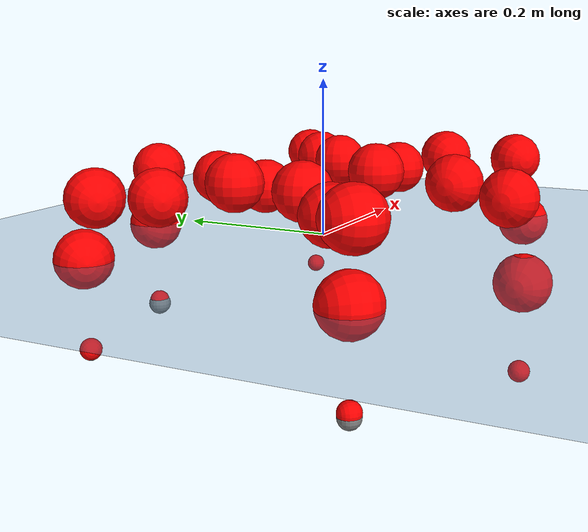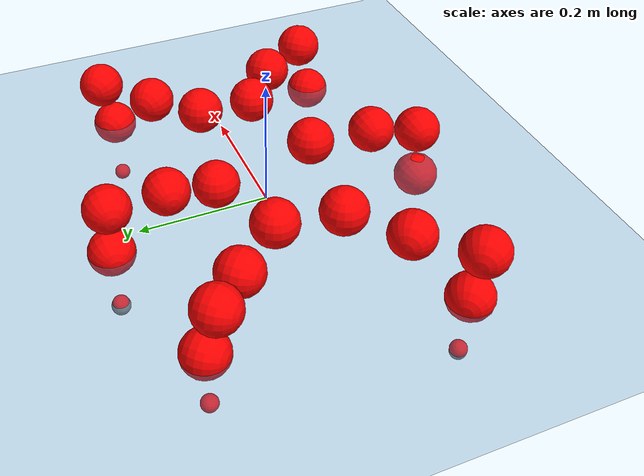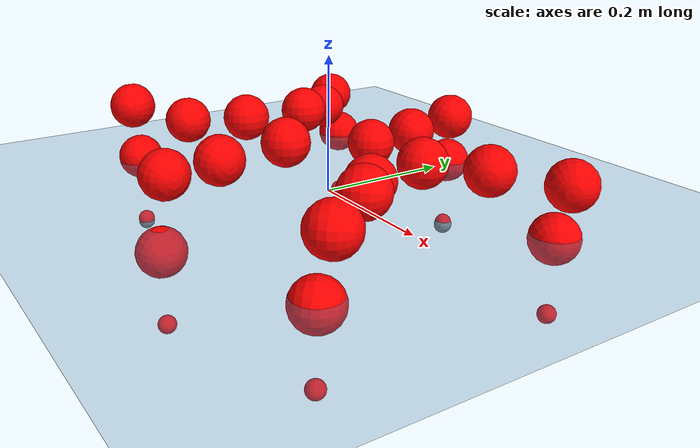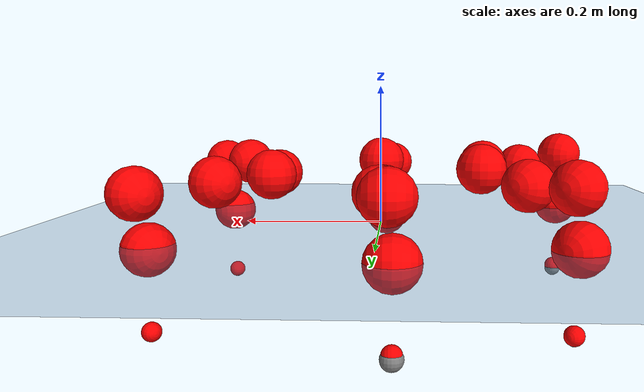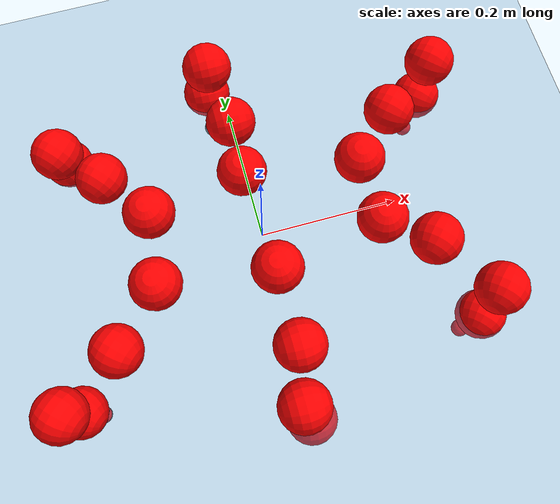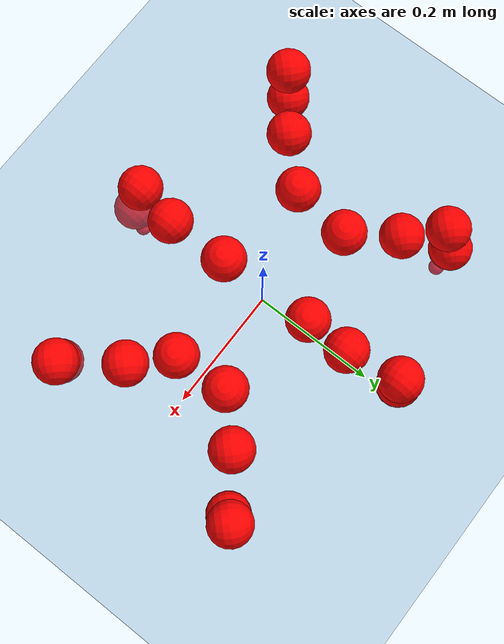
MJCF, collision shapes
<mujoco model="Golem">
  <compiler angle="radian" assetdir="assets" balanceinertia="true" inertiafromgeom="false"/>

  <option timestep="0.005" density="1.2" viscosity="2e-05"/>

  <size nkey="1"/>

  <visual>
    <quality shadowsize="8192"/>
    <map shadowclip="0.5"/>
  </visual>

  <default>
    <default class="/">
      <joint armature="0.01" damping="0.01" frictionloss="0.01"/>
      <geom contype="0" conaffinity="0" group="1" solref="-1000 -80"/>
      <site size="0.01 0.005 0.005" group="5"/>
      <general forcelimited="true" biastype="affine" gainprm="25" biasprm="0 -25 -0.5"/>
      <default class="visual">
        <geom type="mesh" group="2"/>
      </default>
      <default class="collision">
        <geom group="3"/>
      </default>
      <default class="foot">
        <geom size="0.01 0 0" condim="6" group="4" priority="1" solimp="0.015 1 0.01"/>
      </default>
      <default class="reward_collision_sphere">
        <geom group="5" rgba="1 0 0 1"/>
      </default>
    </default>
  </default>

  <asset>
    <texture type="skybox" colorspace="auto" name="//unnamed_texture_0" builtin="gradient" rgb1="0.95 0.95 0.95" rgb2="0.95 0.95 0.95" width="100" height="600"/>
    <texture type="2d" colorspace="auto" name="texplane" builtin="checker" rgb1="0.345 0.575 0.748" rgb2="0.345 0.575 0.748" markrgb="1 1 1" width="512" height="512"/>
    <material name="MatPlane" class="/" texture="texplane" texuniform="true" texrepeat="2 2" specular="0.9"/>
    <mesh name="body" class="/" file="body.stl" scale="0.001 0.001 0.001"/>
    <mesh name="coxa" class="/" file="coxa.stl" scale="0.001 0.001 0.001"/>
    <mesh name="femur" class="/" file="femur.stl" scale="0.001 0.001 0.001"/>
    <mesh name="tibia" class="/" file="tibia.stl" scale="0.001 0.001 0.001"/>
    <mesh name="tarsus" class="/" file="tarsus.stl" scale="0.001 0.001 0.001"/>
  </asset>

  <worldbody>
    <geom name="floor" class="/" size="100 100 0.125" type="plane" group="0" material="MatPlane"/>
    <light name="toplight_shadow" class="/" pos="0 0 5" dir="0.0990148 0.0990148 -0.990148" type="directional" ambient="0.04 0.04 0.04" diffuse="0.55 0.55 0.55" specular="0.12 0.12 0.12"/>
    <light name="toplight_fill" class="/" pos="0 0 5" dir="0.0990148 0.0990148 -0.990148" type="directional" castshadow="false" ambient="0.04 0.04 0.04" diffuse="0.3 0.3 0.3" specular="0.08 0.08 0.08"/>
    <body name="trunk" pos="0.00992702 -0.0040237 0.0171256" quat="0.999999 -1.8324e-05 0.000400178 0.00109111">
      <inertial pos="-0.0102391 0.00118154 -0.0158575" quat="0.997873 0.0332431 -0.0124358 0.0546766" mass="1.99503" diaginertia="0.0129052 0.00243664 0.00333405"/>
      <joint name="//unnamed_joint_0" type="free"/>
      <geom name="//unnamed_geom_1" class="/" pos="0 0 0.0531525" quat="1 0 0 0" type="mesh" rgba="0.9 0.9 0.9 1" mesh="body"/>
      <site name="imu" class="/" pos="0.112016 0.0226359 0.0460959" size="0.00880268"/>
      <camera name="track" class="/" pos="0 -1.57847 0" quat="0.707107 0.707107 0 0" mode="trackcom"/>
      <camera name="ego_camera" class="/" pos="0.132738 0 0.0830507" quat="-0.5 -0.5 0.5 0.5"/>
      <body name="coxa_RR" pos="-0.186489 -0.068882 0.0662469" quat="0.384425 0.00105747 0.00150819 -0.923155">
        <inertial pos="0.00260994 0.0168902 -0.00484833" quat="0.9995 0.0294628 0.0072976 -0.0088557" mass="0.164994" diaginertia="0.0158262 0.00304784 0.00437643"/>
        <joint name="coxa_joint_RR" class="/" pos="0 0 0" axis="0.000348664 0.0934263 -0.995626" range="-3.16501 3.38768" armature="0.0137222" damping="0.0538591" frictionloss="0.00660063"/>
        <geom name="//unnamed_geom_2" class="/" type="mesh" rgba="0.2 0.2 0.2 1" mesh="coxa"/>
        <geom name="//unnamed_geom_3" class="reward_collision_sphere" size="0.0352107" pos="-0.0306319 0 0"/>
        <body name="femur_RR" pos="0.0655825 0.000374103 -0.00955543" quat="0.499993 -0.499994 0.500042 0.499971">
          <inertial pos="0.00661504 -0.0109241 0.0108589" quat="0.999954 0.00615828 -0.0053985 0.00504778" mass="0.148215" diaginertia="0.0115605 0.00313571 0.00420089"/>
          <joint name="femur_joint_RR" class="/" pos="0 0 0" axis="-0.00418866 0.00564792 -0.999975" stiffness="0.0400739" range="-3.28011 3.45783" armature="0.0144672" damping="0" frictionloss="0.00313079"/>
          <geom name="//unnamed_geom_4" class="/" type="mesh" rgba="0.9 0.9 0.9 1" mesh="femur"/>
          <geom name="//unnamed_geom_5" class="reward_collision_sphere" size="0.0352107"/>
          <body name="tibia_RR" pos="-0.0154973 -0.0976711 -0.0123849" quat="0.00315096 0.999987 0.00393514 0.0010752">
            <inertial pos="0.0148577 0.0116094 -0.00137023" quat="0.997741 -0.0293764 0.0566607 -0.0209831" mass="0.13518" diaginertia="0.0139767 0.00346562 0.00451996"/>
            <joint name="tibia_joint_RR" class="/" pos="0 0 0" axis="0.0478224 0.0237162 0.998574" range="-2.80662 3.32075" armature="0.0139601" damping="0.0519832" frictionloss="0.0067895"/>
            <geom name="//unnamed_geom_6" class="/" type="mesh" rgba="0.2 0.2 0.2 1" mesh="tibia"/>
            <geom name="//unnamed_geom_7" class="reward_collision_sphere" size="0.0352107"/>
            <body name="tarsus_RR" pos="0.0853442 -0.00577152 0.000885828" quat="0.999994 -0.00150279 0.00277303 0.00163972">
              <inertial pos="0.0565254 -0.0156501 0.0129193" quat="0.483689 0.5346 0.501047 0.478749" mass="0.122923" diaginertia="0.0106396 0.00246495 0.00361813"/>
              <joint name="tarsus_joint_RR" class="/" pos="0 0 0" axis="-0.00362978 -0.0146729 0.999886" stiffness="0.0817346" range="-3.24211 3.12292" armature="0.00231842" damping="0" frictionloss="0.00270933"/>
              <geom name="//unnamed_geom_8" class="/" type="mesh" rgba="0.9 0.9 0.9 1" mesh="tarsus"/>
              <geom name="foot_1" class="foot" size="0.0129487" pos="0.114359 0 0" quat="0 -0.707107 0 0.707107"/>
              <geom name="//unnamed_geom_10" class="reward_collision_sphere" size="0.0352107"/>
              <geom name="//unnamed_geom_11" class="reward_collision_sphere" size="0.013204" pos="0.109764 0 0"/>
              <site name="foot_1" class="foot" pos="0.114359 0 0" quat="0 -0.707107 0 0.707107" size="0.00880268"/>
            </body>
          </body>
        </body>
      </body>
      <body name="coxa_RM" pos="-0.00860645 -0.0989342 0.0699978" quat="0.702717 0.000382058 -0.00626599 -0.711442">
        <inertial pos="0.0151528 0.00133927 0.00956506" quat="0.999652 0.0033071 0.0167621 0.020095" mass="0.173588" diaginertia="0.0147237 0.00393319 0.0047732"/>
        <joint name="coxa_joint_RM" class="/" pos="0 0 0" axis="-0.0156277 0.0281874 -0.99948" stiffness="0.0486451" range="-2.78393 3.1739" armature="0.0118028" damping="0" frictionloss="0.00856486"/>
        <geom name="//unnamed_geom_12" class="/" type="mesh" rgba="0.2 0.2 0.2 1" mesh="coxa"/>
        <geom name="//unnamed_geom_13" class="reward_collision_sphere" size="0.0352107" pos="-0.0306319 0 0"/>
        <body name="femur_RM" pos="0.0718838 0.00206068 -0.0086541" quat="0.494647 -0.50257 0.49811 0.504613">
          <inertial pos="-0.00988438 0.00923808 -0.00900939" quat="0.99709 -0.0618303 0.0252431 -0.0367502" mass="0.111235" diaginertia="0.00918468 0.00295699 0.003428"/>
          <joint name="femur_joint_RM" class="/" pos="0 0 0" axis="0.0117698 0.0109095 -0.999871" stiffness="0.0855807" range="-3.08434 3.17208" armature="0.0061097" damping="0.0238188" frictionloss="0.0127929"/>
          <geom name="//unnamed_geom_14" class="/" type="mesh" rgba="0.9 0.9 0.9 1" mesh="femur"/>
          <geom name="//unnamed_geom_15" class="reward_collision_sphere" size="0.0352107"/>
          <body name="tibia_RM" pos="0.0106395 -0.0727741 -0.0152347" quat="-0.00114635 0.999996 -0.00103848 -0.00233093">
            <inertial pos="0.0081626 -0.0185211 -0.00361212" quat="0.999453 0.00796614 -0.0238573 -0.0214926" mass="0.108314" diaginertia="0.0084109 0.00241568 0.0026844"/>
            <joint name="tibia_joint_RM" class="/" pos="0 0 0" axis="0.00165442 -0.0568159 0.998383" range="-3.39388 3.51325" armature="0.00353899" damping="0.0901043" frictionloss="0.00714048"/>
            <geom name="//unnamed_geom_16" class="/" type="mesh" rgba="0.2 0.2 0.2 1" mesh="tibia"/>
            <geom name="//unnamed_geom_17" class="reward_collision_sphere" size="0.0352107"/>
            <body name="tarsus_RM" pos="0.102445 0.0158082 -0.0109031" quat="0.999979 0.00316733 -0.00433398 -0.00376573">
              <inertial pos="0.0521233 -0.0173832 -0.00862059" quat="0.499827 0.494979 0.498164 0.506953" mass="0.193927" diaginertia="0.0132116 0.00327279 0.00518241"/>
              <joint name="tarsus_joint_RM" class="/" pos="0 0 0" axis="0.0496146 -0.0265434 0.998416" stiffness="0.0200629" range="-3.08622 3.26302" armature="0.00395725" damping="0" frictionloss="0.00863263"/>
              <geom name="//unnamed_geom_18" class="/" type="mesh" rgba="0.9 0.9 0.9 1" mesh="tarsus"/>
              <geom name="foot_2" class="foot" size="0.00586398" pos="0.114359 0 0" quat="0 -0.707107 0 0.707107"/>
              <geom name="//unnamed_geom_20" class="reward_collision_sphere" size="0.0352107"/>
              <geom name="//unnamed_geom_21" class="reward_collision_sphere" size="0.013204" pos="0.109764 0 0"/>
              <site name="foot_2" class="foot" pos="0.114359 0 0" quat="0 -0.707107 0 0.707107" size="0.00880268"/>
            </body>
          </body>
        </body>
      </body>
      <body name="coxa_RF" pos="0.169884 -0.0570573 0.053369" quat="0.925911 -0.00134225 -0.00236852 -0.377732">
        <inertial pos="0.0157422 -0.00689843 -0.0143429" quat="0.998428 0.0545995 -0.00780708 -0.00993062" mass="0.094215" diaginertia="0.00979947 0.002899 0.00349994"/>
        <joint name="coxa_joint_RF" class="/" pos="0 0 0" axis="0.0539573 -0.0147632 -0.998434" stiffness="0.0287334" range="-2.91016 3.15499" armature="0.0156376" damping="0" frictionloss="0.00357537"/>
        <geom name="//unnamed_geom_22" class="/" type="mesh" rgba="0.2 0.2 0.2 1" mesh="coxa"/>
        <geom name="//unnamed_geom_23" class="reward_collision_sphere" size="0.0352107" pos="-0.0306319 0 0"/>
        <body name="femur_RF" pos="0.0441297 0.00353561 0.0121678" quat="0.503577 -0.502662 0.499943 0.493758">
          <inertial pos="0.00567221 0.00989101 -0.00520836" quat="0.999676 0.0253469 0.00186168 -0.00143995" mass="0.198316" diaginertia="0.0107861 0.00413133 0.00553389"/>
          <joint name="femur_joint_RF" class="/" pos="0 0 0" axis="-0.0176353 0.0108803 -0.999785" stiffness="0.0876051" range="-3.3216 3.46938" armature="0.0160807" damping="0" frictionloss="0.0166312"/>
          <geom name="//unnamed_geom_24" class="/" type="mesh" rgba="0.9 0.9 0.9 1" mesh="femur"/>
          <geom name="//unnamed_geom_25" class="reward_collision_sphere" size="0.0352107"/>
          <body name="tibia_RF" pos="0.0081678 -0.102186 -0.017293" quat="-0.00130938 0.999999 -0.000772931 -9.63106e-06">
            <inertial pos="0.015929 0.00688518 0.000501848" quat="0.999824 0.00138883 -0.00573909 0.0178243" mass="0.148135" diaginertia="0.0149923 0.00355392 0.00454979"/>
            <joint name="tibia_joint_RF" class="/" pos="0 0 0" axis="0.0530056 -0.0112721 0.998531" stiffness="0.0437549" range="-3.37822 3.05502" armature="0.00998621" damping="0.0827366" frictionloss="0.00378147"/>
            <geom name="//unnamed_geom_26" class="/" type="mesh" rgba="0.2 0.2 0.2 1" mesh="tibia"/>
            <geom name="//unnamed_geom_27" class="reward_collision_sphere" size="0.0352107"/>
            <body name="tarsus_RF" pos="0.0893071 0.00530889 0.0158258" quat="0.999979 -0.00360032 -0.00537788 0.000610112">
              <inertial pos="0.0764594 0.0113597 0.00317028" quat="0.533417 0.489231 0.542644 0.426213" mass="0.141606" diaginertia="0.0125789 0.00290675 0.00542953"/>
              <joint name="tarsus_joint_RF" class="/" pos="0 0 0" axis="-0.00697061 -0.054681 0.99848" range="-2.99736 3.11411" armature="0.0156748" damping="0.00699351" frictionloss="0.0153981"/>
              <geom name="//unnamed_geom_28" class="/" type="mesh" rgba="0.9 0.9 0.9 1" mesh="tarsus"/>
              <geom name="foot_3" class="foot" size="0.00910373" pos="0.114359 0 0" quat="0 -0.707107 0 0.707107"/>
              <geom name="//unnamed_geom_30" class="reward_collision_sphere" size="0.0352107"/>
              <geom name="//unnamed_geom_31" class="reward_collision_sphere" size="0.013204" pos="0.109764 0 0"/>
              <site name="foot_3" class="foot" pos="0.114359 0 0" quat="0 -0.707107 0 0.707107" size="0.00880268"/>
            </body>
          </body>
        </body>
      </body>
      <body name="coxa_LR" pos="-0.174104 0.0712316 0.0671613" quat="0.383824 -0.00209364 -0.00249048 0.923401">
        <inertial pos="-0.00894871 -0.000100042 0.00382286" quat="0.996453 0.0807656 0.00527977 -0.0230467" mass="0.126414" diaginertia="0.0107459 0.00215319 0.00377949"/>
        <joint name="coxa_joint_LR" class="/" pos="0 0 0" axis="0.0346806 0.0338092 -0.998826" range="-3.08424 2.93777" armature="0.00191227" damping="0" frictionloss="0.00498347"/>
        <geom name="//unnamed_geom_32" class="/" type="mesh" rgba="0.2 0.2 0.2 1" mesh="coxa"/>
        <geom name="//unnamed_geom_33" class="reward_collision_sphere" size="0.0352107" pos="-0.0306319 0 0"/>
        <body name="femur_LR" pos="0.057444 -0.0121225 -0.0144005" quat="0.495812 -0.497822 0.502863 0.503461">
          <inertial pos="0.0148752 0.0165552 -0.016544" quat="1 -2.6914e-05 0.000392467 -0.000343712" mass="0.0939735" diaginertia="0.00833133 0.00213492 0.00377714"/>
          <joint name="femur_joint_LR" class="/" pos="0 0 0" axis="-0.0268854 -0.0811877 0.996336" stiffness="0.0521589" range="-2.88266 3.41083" armature="0.000417998" damping="0" frictionloss="0.0153057"/>
          <geom name="//unnamed_geom_34" class="/" type="mesh" rgba="0.9 0.9 0.9 1" mesh="femur"/>
          <geom name="//unnamed_geom_35" class="reward_collision_sphere" size="0.0352107"/>
          <body name="tibia_LR" pos="-0.00471577 -0.0716441 0.000959084" quat="0.00124355 0.999998 0.00133704 0.000636006">
            <inertial pos="6.94983e-05 0.0164878 -0.00175922" quat="0.998588 -0.0257778 0.0372282 0.0277618" mass="0.185667" diaginertia="0.014781 0.00306962 0.0055775"/>
            <joint name="tibia_joint_LR" class="/" pos="0 0 0" axis="0.0789616 -0.00433472 -0.996868" stiffness="0.0787546" range="-3.1684 3.45314" armature="0.00823726" damping="0" frictionloss="0.00317353"/>
            <geom name="//unnamed_geom_36" class="/" type="mesh" rgba="0.2 0.2 0.2 1" mesh="tibia"/>
            <geom name="//unnamed_geom_37" class="reward_collision_sphere" size="0.0352107"/>
            <body name="tarsus_LR" pos="0.0723304 0.0152836 0.0119489" quat="0.99998 0.00140193 -0.000494641 -0.00607098">
              <inertial pos="0.0707475 -0.00980988 0.0138461" quat="0.514297 0.497863 0.498259 0.489253" mass="0.153732" diaginertia="0.0104538 0.0025638 0.00352986"/>
              <joint name="tarsus_joint_LR" class="/" pos="0 0 0" axis="-0.0169831 0.000737456 -0.999856" stiffness="0.0345766" range="-2.86494 3.23826" armature="0.0150221" damping="0.028386" frictionloss="0.010329"/>
              <geom name="//unnamed_geom_38" class="/" type="mesh" rgba="0.9 0.9 0.9 1" mesh="tarsus"/>
              <geom name="foot_4" class="foot" size="0.00910372" pos="0.114359 0 0" quat="0.707107 0 -0.707107 0"/>
              <geom name="//unnamed_geom_40" class="reward_collision_sphere" size="0.0352107"/>
              <geom name="//unnamed_geom_41" class="reward_collision_sphere" size="0.013204" pos="0.109764 0 0"/>
              <site name="foot_4" class="foot" pos="0.114359 0 0" quat="0.707107 0 -0.707107 0" size="0.00880268"/>
            </body>
          </body>
        </body>
      </body>
      <body name="coxa_LM" pos="-0.0167676 0.115683 0.0414502" quat="0.707654 -0.000893463 0.0010729 0.706558">
        <inertial pos="-0.0120252 -0.00852463 -0.00916731" quat="0.998558 0.0272139 -0.0462119 -0.00235088" mass="0.169918" diaginertia="0.00955425 0.0036163 0.00375959"/>
        <joint name="coxa_joint_LM" class="/" pos="0 0 0" axis="-0.0458522 0.065057 -0.996828" stiffness="0.0112104" range="-3.33764 2.78495" armature="0.00825745" damping="0.00275605" frictionloss="0.00983734"/>
        <geom name="//unnamed_geom_42" class="/" type="mesh" rgba="0.2 0.2 0.2 1" mesh="coxa"/>
        <geom name="//unnamed_geom_43" class="reward_collision_sphere" size="0.0352107" pos="-0.0306319 0 0"/>
        <body name="femur_LM" pos="0.0431823 -0.00317583 0.00722217" quat="0.495309 -0.499015 0.505851 0.499768">
          <inertial pos="-0.0133161 0.00577774 0.0127104" quat="0.999905 0.00889094 -0.000425846 -0.0105123" mass="0.0890318" diaginertia="0.00991037 0.00250434 0.00268474"/>
          <joint name="femur_joint_LM" class="/" pos="0 0 0" axis="0.0634981 0.0268238 0.997621" range="-2.81462 3.46196" armature="0.00551654" damping="0" frictionloss="0.00318274"/>
          <geom name="//unnamed_geom_44" class="/" type="mesh" rgba="0.9 0.9 0.9 1" mesh="femur"/>
          <geom name="//unnamed_geom_45" class="reward_collision_sphere" size="0.0352107"/>
          <body name="tibia_LM" pos="-0.00823945 -0.0889474 0.0125698" quat="0.00367449 0.999992 -0.000354383 0.00159079">
            <inertial pos="-0.0126976 -0.011032 -0.00310459" quat="0.999008 -0.0325866 -0.0278021 -0.0121462" mass="0.102944" diaginertia="0.00979217 0.00319947 0.00289039"/>
            <joint name="tibia_joint_LM" class="/" pos="0 0 0" axis="0.063061 0.00639862 -0.997989" stiffness="0.0934556" range="-3.069 3.15043" armature="0.0155539" damping="0.0520428" frictionloss="0.0101585"/>
            <geom name="//unnamed_geom_46" class="/" type="mesh" rgba="0.2 0.2 0.2 1" mesh="tibia"/>
            <geom name="//unnamed_geom_47" class="reward_collision_sphere" size="0.0352107"/>
            <body name="tarsus_LM" pos="0.0754464 0.00461782 -0.00639948" quat="1 1.858e-05 -5.40981e-05 6.74773e-05">
              <inertial pos="0.054631 0.00451899 -0.0143176" quat="0.518658 0.529582 0.484896 0.464126" mass="0.155191" diaginertia="0.0136773 0.00254367 0.00409781"/>
              <joint name="tarsus_joint_LM" class="/" pos="0 0 0" axis="-0.00189206 0.017454 -0.999846" stiffness="0.0633549" range="-2.97295 3.07645" armature="0.0115252" damping="0" frictionloss="0.00892319"/>
              <geom name="//unnamed_geom_48" class="/" type="mesh" rgba="0.9 0.9 0.9 1" mesh="tarsus"/>
              <geom name="foot_5" class="foot" size="0.0148386" pos="0.114359 0 0" quat="0.707107 0 -0.707107 0"/>
              <geom name="//unnamed_geom_50" class="reward_collision_sphere" size="0.0352107"/>
              <geom name="//unnamed_geom_51" class="reward_collision_sphere" size="0.013204" pos="0.109764 0 0"/>
              <site name="foot_5" class="foot" pos="0.114359 0 0" quat="0.707107 0 -0.707107 0" size="0.00880268"/>
            </body>
          </body>
        </body>
      </body>
      <body name="coxa_LF" pos="0.165006 0.0746542 0.0591271" quat="0.926318 -0.00498261 0.000888256 0.376708">
        <inertial pos="0.00230497 -0.000853158 -0.0143019" quat="0.999284 -0.0120823 -0.0166967 -0.0317223" mass="0.149504" diaginertia="0.0105308 0.00422677 0.00446901"/>
        <joint name="coxa_joint_LF" class="/" pos="0 0 0" axis="-0.0702414 -0.0238808 -0.997244" stiffness="0.0314116" range="-3.26432 3.038" armature="0.0068423" damping="0.00760075" frictionloss="0.0151886"/>
        <geom name="//unnamed_geom_52" class="/" type="mesh" rgba="0.2 0.2 0.2 1" mesh="coxa"/>
        <geom name="//unnamed_geom_53" class="reward_collision_sphere" size="0.0352107" pos="-0.0306319 0 0"/>
        <body name="femur_LF" pos="0.0576166 -0.000321311 -0.00346495" quat="0.496632 -0.500745 0.499353 0.503247">
          <inertial pos="-0.00107468 -0.00400898 -0.0163015" quat="0.997968 0.0219723 -0.024752 0.0544453" mass="0.105157" diaginertia="0.0131193 0.0033664 0.00392783"/>
          <joint name="femur_joint_LF" class="/" pos="0 0 0" axis="0.0483611 0.0488628 0.997634" stiffness="0.00606405" range="-3.24217 3.15293" armature="0.0100732" damping="0.00466188" frictionloss="0.00203346"/>
          <geom name="//unnamed_geom_54" class="/" type="mesh" rgba="0.9 0.9 0.9 1" mesh="femur"/>
          <geom name="//unnamed_geom_55" class="reward_collision_sphere" size="0.0352107"/>
          <body name="tibia_LF" pos="0.00619819 -0.103845 -0.0146534" quat="0.00622121 0.999964 -0.00170351 -0.00551675">
            <inertial pos="-0.00596483 0.00470789 0.0140119" quat="0.996517 0.0400209 -0.0631276 -0.0369726" mass="0.120638" diaginertia="0.00808044 0.00293216 0.00380459"/>
            <joint name="tibia_joint_LF" class="/" pos="0 0 0" axis="-0.00185378 -0.00141734 -0.999997" stiffness="0.0471904" range="-3.50909 2.93972" armature="0.0114821" damping="0" frictionloss="0.00907586"/>
            <geom name="//unnamed_geom_56" class="/" type="mesh" rgba="0.2 0.2 0.2 1" mesh="tibia"/>
            <geom name="//unnamed_geom_57" class="reward_collision_sphere" size="0.0352107"/>
            <body name="tarsus_LF" pos="0.0739908 -0.0146634 0.00115289" quat="0.999986 -0.00164827 0.00100816 0.00492528">
              <inertial pos="0.0787007 0.00846299 -0.00267324" quat="0.502011 0.500719 0.498862 0.498399" mass="0.18163" diaginertia="0.0146745 0.00408971 0.00362318"/>
              <joint name="tarsus_joint_LF" class="/" pos="0 0 0" axis="-0.0153416 -0.0757323 -0.99701" stiffness="0.066581" range="-3.11041 3.4283" armature="0.00121571" damping="0" frictionloss="0.000854101"/>
              <geom name="//unnamed_geom_58" class="/" type="mesh" rgba="0.9 0.9 0.9 1" mesh="tarsus"/>
              <geom name="foot_6" class="foot" size="0.00636096" pos="0.114359 0 0" quat="0.707107 0 -0.707107 0"/>
              <geom name="//unnamed_geom_60" class="reward_collision_sphere" size="0.0352107"/>
              <geom name="//unnamed_geom_61" class="reward_collision_sphere" size="0.013204" pos="0.109764 0 0"/>
              <site name="foot_6" class="foot" pos="0.114359 0 0" quat="0.707107 0 -0.707107 0" size="0.00880268"/>
            </body>
          </body>
        </body>
      </body>
    </body>
  </worldbody>

  <contact>
    <pair class="/" geom1="floor" geom2="foot_1" name="//unnamed_contact_0"/>
    <pair class="/" geom1="floor" geom2="foot_2" name="//unnamed_contact_1"/>
    <pair class="/" geom1="floor" geom2="foot_3" name="//unnamed_contact_2"/>
    <pair class="/" geom1="floor" geom2="foot_4" name="//unnamed_contact_3"/>
    <pair class="/" geom1="floor" geom2="foot_5" name="//unnamed_contact_4"/>
    <pair class="/" geom1="floor" geom2="foot_6" name="//unnamed_contact_5"/>
  </contact>

  <actuator>
    <general name="coxa_joint_RR" class="/" joint="coxa_joint_RR" forcerange="-3.54834 3.54834" gainprm="18.1243" biasprm="0 -18.1243 -0.382945"/>
    <general name="femur_joint_RR" class="/" joint="femur_joint_RR" forcerange="-3.20859 3.20859" gainprm="18.1243" biasprm="0 -18.1243 -0.382945"/>
    <general name="tibia_joint_RR" class="/" joint="tibia_joint_RR" forcerange="-9.73783 9.73783" gainprm="18.1243" biasprm="0 -18.1243 -0.382945"/>
    <general name="tarsus_joint_RR" class="/" joint="tarsus_joint_RR" forcerange="-9.91875 9.91875" gainprm="18.1243" biasprm="0 -18.1243 -0.382945"/>
    <general name="coxa_joint_RM" class="/" joint="coxa_joint_RM" forcerange="-10.3424 10.3424" gainprm="18.1243" biasprm="0 -18.1243 -0.382945"/>
    <general name="femur_joint_RM" class="/" joint="femur_joint_RM" forcerange="-4.96477 4.96477" gainprm="18.1243" biasprm="0 -18.1243 -0.382945"/>
    <general name="tibia_joint_RM" class="/" joint="tibia_joint_RM" forcerange="-6.99694 6.99694" gainprm="18.1243" biasprm="0 -18.1243 -0.382945"/>
    <general name="tarsus_joint_RM" class="/" joint="tarsus_joint_RM" forcerange="-7.30023 7.30023" gainprm="18.1243" biasprm="0 -18.1243 -0.382945"/>
    <general name="coxa_joint_RF" class="/" joint="coxa_joint_RF" forcerange="-5.32523 5.32523" gainprm="18.1243" biasprm="0 -18.1243 -0.382945"/>
    <general name="femur_joint_RF" class="/" joint="femur_joint_RF" forcerange="-2.01135 2.01135" gainprm="18.1243" biasprm="0 -18.1243 -0.382945"/>
    <general name="tibia_joint_RF" class="/" joint="tibia_joint_RF" forcerange="-2.43189 2.43189" gainprm="18.1243" biasprm="0 -18.1243 -0.382945"/>
    <general name="tarsus_joint_RF" class="/" joint="tarsus_joint_RF" forcerange="-2.62303 2.62303" gainprm="18.1243" biasprm="0 -18.1243 -0.382945"/>
    <general name="coxa_joint_LR" class="/" joint="coxa_joint_LR" forcerange="-6.19611 6.19611" gainprm="18.1243" biasprm="0 -18.1243 -0.382945"/>
    <general name="femur_joint_LR" class="/" joint="femur_joint_LR" forcerange="-5.82906 5.82906" gainprm="18.1243" biasprm="0 -18.1243 -0.382945"/>
    <general name="tibia_joint_LR" class="/" joint="tibia_joint_LR" forcerange="-2.11224 2.11224" gainprm="18.1243" biasprm="0 -18.1243 -0.382945"/>
    <general name="tarsus_joint_LR" class="/" joint="tarsus_joint_LR" forcerange="-2.43398 2.43398" gainprm="18.1243" biasprm="0 -18.1243 -0.382945"/>
    <general name="coxa_joint_LM" class="/" joint="coxa_joint_LM" forcerange="-5.52836 5.52836" gainprm="18.1243" biasprm="0 -18.1243 -0.382945"/>
    <general name="femur_joint_LM" class="/" joint="femur_joint_LM" forcerange="-7.59529 7.59529" gainprm="18.1243" biasprm="0 -18.1243 -0.382945"/>
    <general name="tibia_joint_LM" class="/" joint="tibia_joint_LM" forcerange="-6.21229 6.21229" gainprm="18.1243" biasprm="0 -18.1243 -0.382945"/>
    <general name="tarsus_joint_LM" class="/" joint="tarsus_joint_LM" forcerange="-8.6367 8.6367" gainprm="18.1243" biasprm="0 -18.1243 -0.382945"/>
    <general name="coxa_joint_LF" class="/" joint="coxa_joint_LF" forcerange="-6.74363 6.74363" gainprm="18.1243" biasprm="0 -18.1243 -0.382945"/>
    <general name="femur_joint_LF" class="/" joint="femur_joint_LF" forcerange="-2.69633 2.69633" gainprm="18.1243" biasprm="0 -18.1243 -0.382945"/>
    <general name="tibia_joint_LF" class="/" joint="tibia_joint_LF" forcerange="-2.87624 2.87624" gainprm="18.1243" biasprm="0 -18.1243 -0.382945"/>
    <general name="tarsus_joint_LF" class="/" joint="tarsus_joint_LF" forcerange="-5.29054 5.29054" gainprm="18.1243" biasprm="0 -18.1243 -0.382945"/>
  </actuator>

  <sensor>
    <gyro site="imu" name="imu_angular_velocity"/>
    <velocimeter site="imu" name="imu_linear_velocity"/>
    <framelinvel objtype="site" objname="foot_1" name="foot_1_global_linear_velocity"/>
    <framelinvel objtype="site" objname="foot_2" name="foot_2_global_linear_velocity"/>
    <framelinvel objtype="site" objname="foot_3" name="foot_3_global_linear_velocity"/>
    <framelinvel objtype="site" objname="foot_4" name="foot_4_global_linear_velocity"/>
    <framelinvel objtype="site" objname="foot_5" name="foot_5_global_linear_velocity"/>
    <framelinvel objtype="site" objname="foot_6" name="foot_6_global_linear_velocity"/>
  </sensor>

  <keyframe>
    <key name="home" qpos="0 0 0.1457 1 0 0 0 0 0 0 0 0 0 0 0 0 0 0 0 0 0 0 0 0 0 0 0 0 0 0 0"/>
  </keyframe>
</mujoco>
